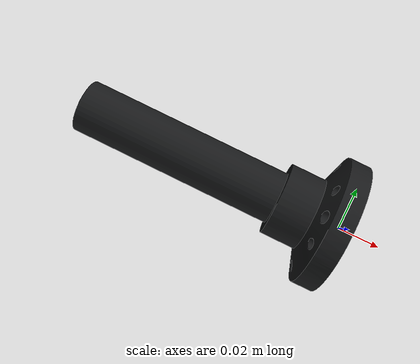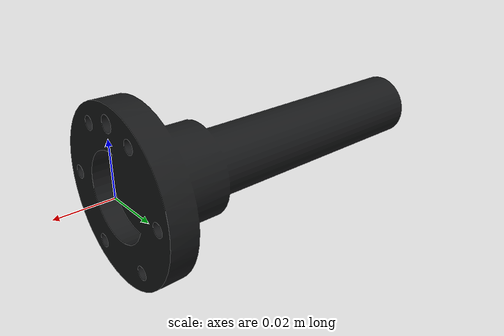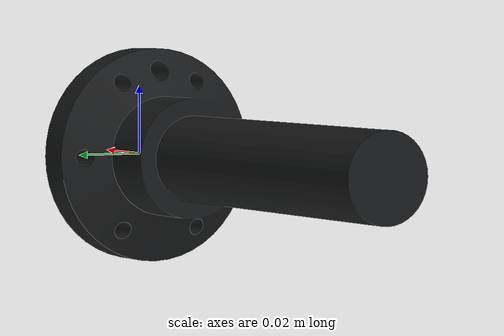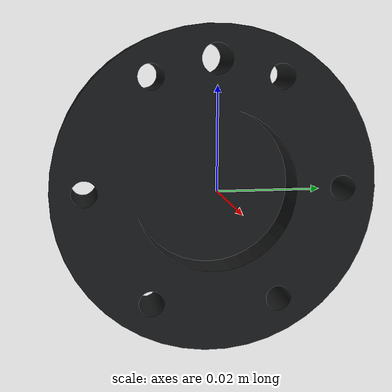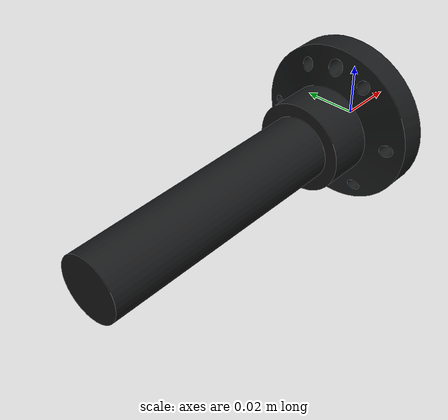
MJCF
<mujoco model="link_6">
  <default>
    <default class="visual">
      <geom group="2" type="mesh" contype="0" conaffinity="0"/>
    </default>
    <default class="collision">
      <geom group="3" type="mesh"/>
    </default>
  </default>
  <asset>
    <material name="colour_abb_black" specular="0.5" shininess="0.25" rgba="0.094118 0.098039 0.101961 1.000000"/>
    <mesh file="link_6.obj"/>
  </asset>
  <worldbody>
    <body name="link_6">
      <geom material="colour_abb_black" mesh="link_6" class="visual"/>
      <geom mesh="link_6" class="collision"/>
    </body>
  </worldbody>
</mujoco>
